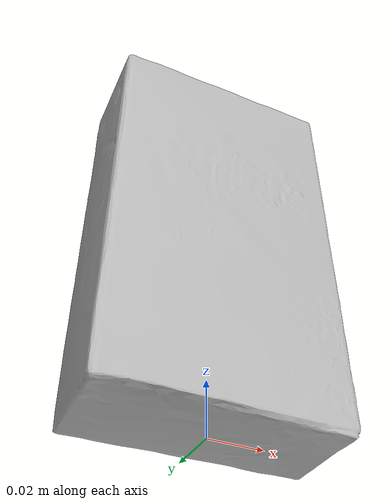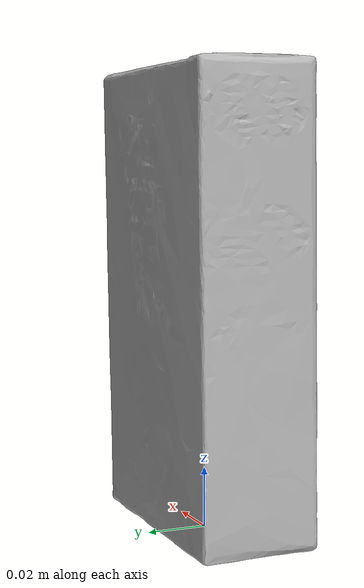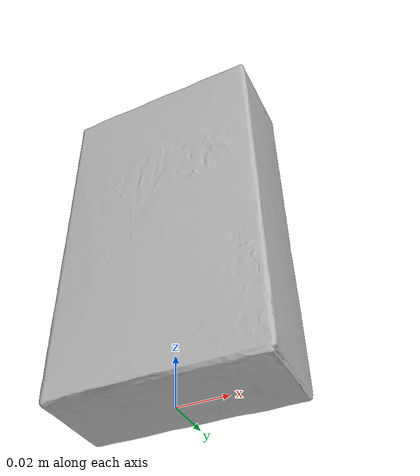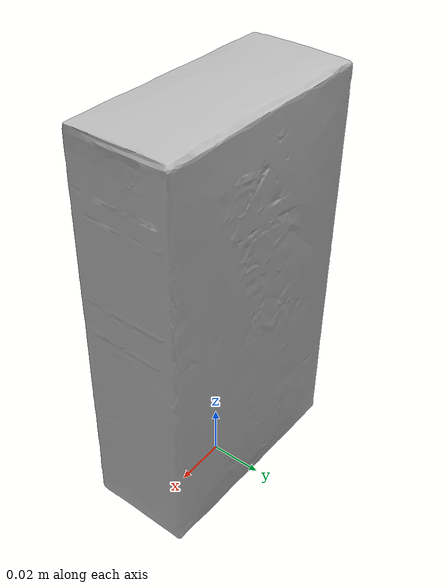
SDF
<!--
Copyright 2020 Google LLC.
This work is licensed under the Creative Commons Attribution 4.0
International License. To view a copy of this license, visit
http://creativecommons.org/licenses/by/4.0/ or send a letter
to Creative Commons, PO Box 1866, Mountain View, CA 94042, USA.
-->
<?xml version="1.0" ?>
<sdf version="1.6">
  <model name="Nestle_Nips_Hard_Candy_Peanut_Butter">
    <link name="link_0">
      <visual name="visual">
        <geometry>
          <mesh>
            <uri>meshes/model.obj</uri>
          </mesh>
        </geometry>
      </visual>
      <collision name="collision_0">
        <geometry>
          <mesh>
            <uri>meshes/model.obj</uri>
          </mesh>
        </geometry>
      </collision>
    </link>
  </model>
</sdf>
